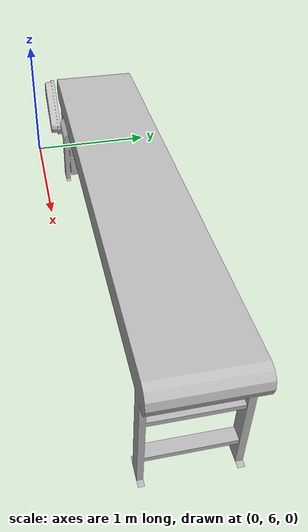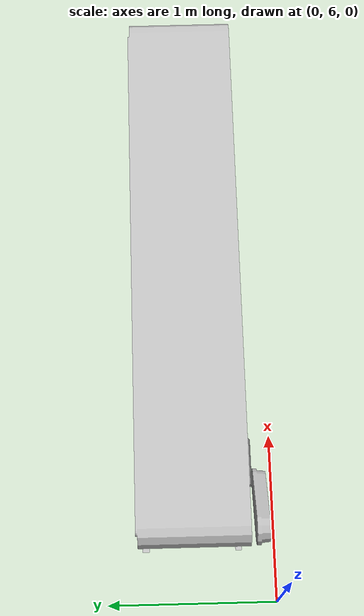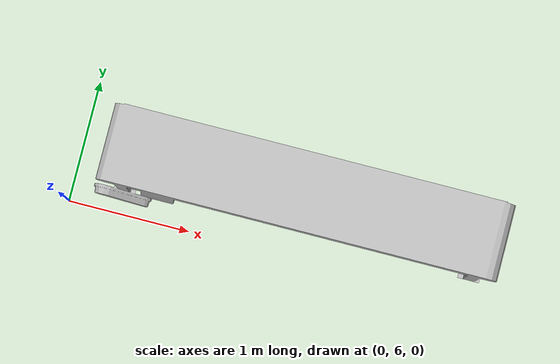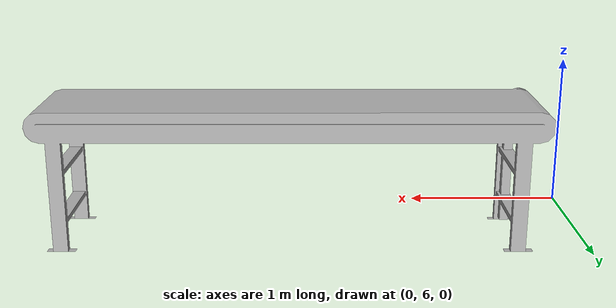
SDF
<?xml version="1.0" ?>
<sdf version="1.6">
  <!--model name="conveyor_belt"-->

    <model name="conveyor_belt_fixed">
      <static>1</static>
      <pose>0 0 0 0 0 0</pose>
      <link name="link">
        <pose>0 0 0 0 0 0</pose>
        <visual name="belt_visual">
          <geometry>
            <mesh>
              <uri>model://conveyor/meshes/revised_conveyor.stl</uri>
              <scale>1 1 1</scale>
            </mesh>
          </geometry>
        </visual>

       <collision name="belt_colli">
          <geometry>
            <mesh>
              <uri>model://conveyor/meshes/revised_conveyor.stl</uri>
              <scale>1 1 1</scale>
            </mesh>
          </geometry>
        </collision>

      </link>
    </model>

  <!--/model-->
</sdf>
